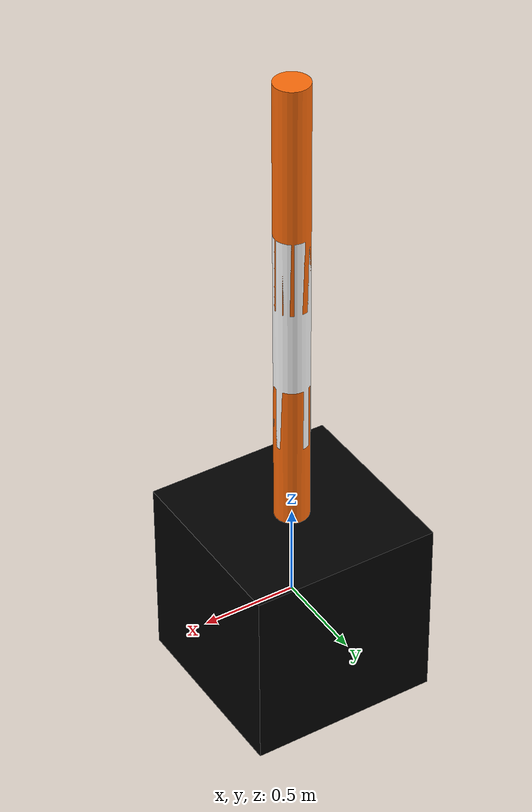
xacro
<?xml version="1.0" ?>

<robot name="mrm" xmlns:xacro="http://www.ros.org/wiki/xacro">
    <link name="base_link">
        <visual>
            <origin rpy="0 0 0" xyz="0 0 0"/>
             <material name="black">
                <color rgba="${0/255} ${0/255} ${0/255} 1.0"/>
            </material>
            <geometry>
                <box size="1.0 1.0 1.0"/>
            </geometry>
        </visual>

	<collision>
      		<geometry>
        		<box size="1.0 1.0 1.0"/>
      		</geometry>
   	 </collision>
   	 <inertial>
     		 <mass value="100"/>
     		 <inertia ixx="0.8333" ixy="0.0" ixz="0.0" iyy="0.8333" iyz="0.0" izz="0.8333"/>
    	 </inertial>
    </link>

    <joint name="base_link__link_01" type="revolute">
        <axis xyz="0 0 1" />
        <limit effort="1000.0" lower="-3.14" upper="3.14" velocity="0.5" />
        <origin rpy="0 0 0" xyz="0 0 0.5"/>
        <parent link="base_link"/>
        <child link="link1"/>
    </joint>

    <transmission name="trans_base_link__link_01">
      <type>transmission_interface/SimpleTransmission</type>
      <joint name="base_link__link_01">
        <hardwareInterface>hardware_interface/EffortJointInterface</hardwareInterface>
      </joint>
      <actuator name="motor_base_link__link_01">
        <hardwareInterface>hardware_interface/EffortJointInterface</hardwareInterface>
        <mechanicalReduction>1</mechanicalReduction>
      </actuator>
    </transmission>

    <link name="link1">
        <visual>
            <origin rpy="0 0 0" xyz="0 0 0.2"/>
	    <material name="orange">
                <color rgba="${255/255} ${108/255} ${10/255} 1.0"/>
            </material>
            <geometry>
                <cylinder radius="0.09" length="1.2"/>
            </geometry>
        </visual>

	<collision>
      		<geometry>
        		<cylinder length="1.2" radius="0.09"/>
      		</geometry>
   	 </collision>
   	 <inertial>
     		 <mass value="10"/>
     		 <inertia ixx="0.12202" ixy="0.0" ixz="0.0" iyy="0.12202" iyz="0.0" izz="0.00405"/>
    	 </inertial>
    </link>

<joint name="link_01__link_02" type="revolute">
        <axis xyz="1 0 0" />
        <limit effort="1000.0" lower="-2.45" upper="2.45" velocity="0.5" />
        <origin rpy="0 0 0" xyz="0 0 0.8"/>
        <parent link="link1"/>
        <child link="link2"/>
    </joint>

<transmission name="trans_link_01__link_02">
      <type>transmission_interface/SimpleTransmission</type>
      <joint name="link_01__link_02">
        <hardwareInterface>hardware_interface/EffortJointInterface</hardwareInterface>
      </joint>
      <actuator name="motor_link_01__link_01">
        <hardwareInterface>hardware_interface/EffortJointInterface</hardwareInterface>
        <mechanicalReduction>1</mechanicalReduction>
      </actuator>
    </transmission>

    <link name="link2">
        <visual>
            <origin rpy="0 0 0" xyz="0 0 0.25"/>
             <material name="white">
                <color rgba="${255/255} ${255/255} ${255/255} 1.0"/>
            </material>
            <geometry>
                <cylinder radius="0.09" length="1.2"/>
            </geometry>
        </visual>

	<collision>
      		<geometry>
        		<cylinder length="1.2" radius="0.09"/>
      		</geometry>
   	 </collision>
   	 <inertial>
     		 <mass value="10"/>
     		 <inertia ixx="0.12202" ixy="0.0" ixz="0.0" iyy="0.12202" iyz="0.0" izz="0.00405"/>
    	 </inertial>
    </link>

<joint name="link_02__link_03" type="revolute">
        <axis xyz="1 0 0" />
        <limit effort="1000.0" lower="-2.45" upper="2.45" velocity="0.5" />
        <origin rpy="0 0 0" xyz="0 0 0.8"/>
        <parent link="link2"/>
        <child link="link3"/>
    </joint>

<transmission name="trans_link_02__link_03">
      <type>transmission_interface/SimpleTransmission</type>
      <joint name="link_02__link_03">
        <hardwareInterface>hardware_interface/EffortJointInterface</hardwareInterface>
      </joint>
      <actuator name="motor_link_02__link_03">
        <hardwareInterface>hardware_interface/EffortJointInterface</hardwareInterface>
        <mechanicalReduction>1</mechanicalReduction>
      </actuator>
    </transmission>

    <link name="link3">
        <visual>
            <origin rpy="0 0 0" xyz="0 0 0.25"/>
             <material name="orange">
                <color rgba="${255/255} ${108/255} ${10/255} 1.0"/>
            </material>
            <geometry>
                <cylinder radius="0.09" length="1.2"/>
            </geometry>
        </visual>
 	<collision>
      		<geometry>
        		<cylinder length="1.2" radius="0.09"/>
      		</geometry>
   	 </collision>
   	 <inertial>
     		 <mass value="10"/>
     		 <inertia ixx="0.12202" ixy="0.0" ixz="0.0" iyy="0.12202" iyz="0.0" izz="0.00405"/>
    	 </inertial>
    </link>

<gazebo>
    <plugin name="gazebo_ros_control" filename="libgazebo_ros_control.so">
    <robotNamespace>/robotarm</robotNamespace>
    </plugin>
</gazebo>

</robot>
